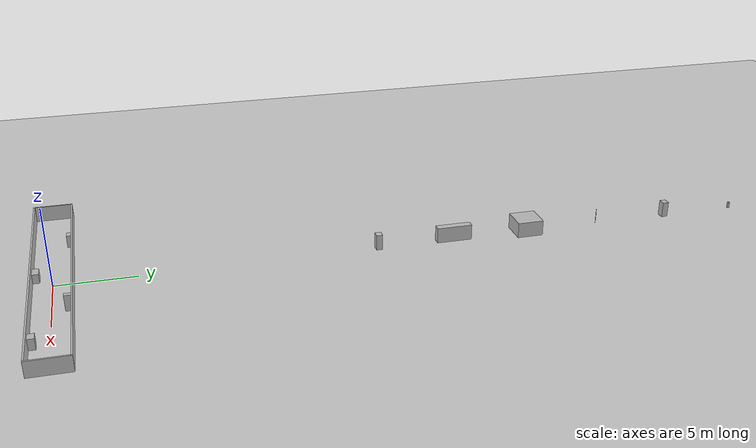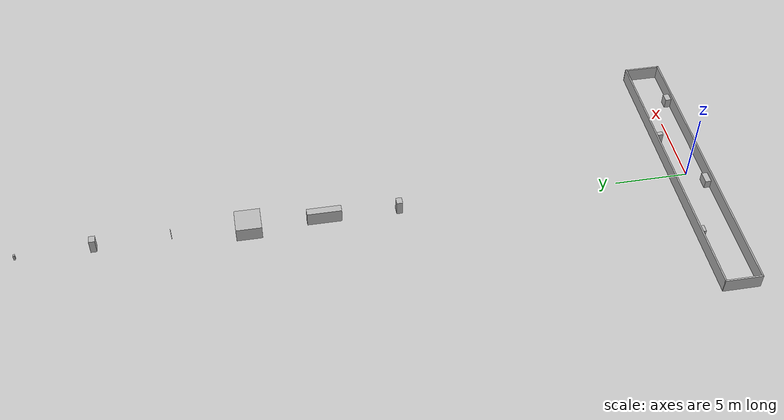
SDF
<?xml version='1.0' encoding='utf-8'?>
<sdf version="1.8">
  <world name="slam_corridor">
    <physics name="1ms" type="ignored">
      <max_step_size>0.001</max_step_size>
      <real_time_factor>1.0</real_time_factor>
    </physics>
    <plugin filename="gz-sim-physics-system" name="gz::sim::systems::Physics" />
    <plugin filename="gz-sim-user-commands-system" name="gz::sim::systems::UserCommands" />
    <plugin filename="gz-sim-contact-system" name="gz::sim::systems::Contact" />
    <plugin filename="gz-sim-scene-broadcaster-system" name="gz::sim::systems::SceneBroadcaster" />
    <plugin filename="gz-sim-sensors-system" name="gz::sim::systems::Sensors">
      <render_engine>ogre2</render_engine>
    </plugin>
    <plugin filename="gz-sim-imu-system" name="gz::sim::systems::Imu" />
    <light type="directional" name="sun">
      <pose>0 0 10 0 0 0</pose>
      <diffuse>0.8 0.8 0.8 1</diffuse>
      <specular>0.2 0.2 0.2 1</specular>
      <direction>-0.5 0.1 -0.9</direction>
    </light>
    <model name="ground_plane">
      <static>true</static>
      <link name="link">
        <collision name="collision">
          <geometry>
            <plane>
              <normal>0 0 1</normal>
              <size>50 12</size>
            </plane>
          </geometry>
        </collision>
        <visual name="visual">
          <geometry>
            <plane>
              <normal>0 0 1</normal>
              <size>50 12</size>
            </plane>
          </geometry>
          <material>
            <diffuse>0.78 0.78 0.78 1</diffuse>
          </material>
        </visual>
      </link>
    </model>
    <model name="wall_north">
      <static>true</static>
      <pose>0 1.2 0.5 0 0 0</pose>
      <link name="link">
        <collision name="collision">
          <geometry>
            <box>
              <size>20 0.1 1</size>
            </box>
          </geometry>
        </collision>
        <visual name="visual">
          <geometry>
            <box>
              <size>20 0.1 1</size>
            </box>
          </geometry>
        </visual>
      </link>
    </model>
    <model name="wall_south">
      <static>true</static>
      <pose>0 -1.2 0.5 0 0 0</pose>
      <link name="link">
        <collision name="collision">
          <geometry>
            <box>
              <size>20 0.1 1</size>
            </box>
          </geometry>
        </collision>
        <visual name="visual">
          <geometry>
            <box>
              <size>20 0.1 1</size>
            </box>
          </geometry>
        </visual>
      </link>
    </model>
    <model name="wall_west">
      <static>true</static>
      <pose>-10 0 0.5 0 0 0</pose>
      <link name="link">
        <collision name="collision">
          <geometry>
            <box>
              <size>0.1 2.5 1</size>
            </box>
          </geometry>
        </collision>
        <visual name="visual">
          <geometry>
            <box>
              <size>0.1 2.5 1</size>
            </box>
          </geometry>
        </visual>
      </link>
    </model>
    <model name="wall_east">
      <static>true</static>
      <pose>10 0 0.5 0 0 0</pose>
      <link name="link">
        <collision name="collision">
          <geometry>
            <box>
              <size>0.1 2.5 1</size>
            </box>
          </geometry>
        </collision>
        <visual name="visual">
          <geometry>
            <box>
              <size>0.1 2.5 1</size>
            </box>
          </geometry>
        </visual>
      </link>
    </model>
    <model name="feature_north_west">
      <static>true</static>
      <pose>-5.5 1.0 0.4 0 0 0</pose>
      <link name="link">
        <collision name="collision">
          <geometry>
            <box>
              <size>0.5 0.3 0.8</size>
            </box>
          </geometry>
        </collision>
        <visual name="visual">
          <geometry>
            <box>
              <size>0.5 0.3 0.8</size>
            </box>
          </geometry>
        </visual>
      </link>
    </model>
    <model name="feature_south_mid">
      <static>true</static>
      <pose>-1.0 -0.95 0.3 0 0 0</pose>
      <link name="link">
        <collision name="collision">
          <geometry>
            <box>
              <size>0.8 0.4 0.6</size>
            </box>
          </geometry>
        </collision>
        <visual name="visual">
          <geometry>
            <box>
              <size>0.8 0.4 0.6</size>
            </box>
          </geometry>
        </visual>
      </link>
    </model>
    <model name="feature_north_east">
      <static>true</static>
      <pose>3.2 0.95 0.5 0 0 0</pose>
      <link name="link">
        <collision name="collision">
          <geometry>
            <box>
              <size>0.3 0.4 1.0</size>
            </box>
          </geometry>
        </collision>
        <visual name="visual">
          <geometry>
            <box>
              <size>0.3 0.4 1.0</size>
            </box>
          </geometry>
        </visual>
      </link>
    </model>
    <model name="feature_south_east">
      <static>true</static>
      <pose>7.0 -0.95 0.35 0 0 0</pose>
      <link name="link">
        <collision name="collision">
          <geometry>
            <box>
              <size>0.6 0.4 0.7</size>
            </box>
          </geometry>
        </collision>
        <visual name="visual">
          <geometry>
            <box>
              <size>0.6 0.4 0.7</size>
            </box>
          </geometry>
        </visual>
      </link>
    </model>
    <model name="g003_preloaded_route_obstacle">
      <static>true</static>
      <pose>0.0 20.0 0.5 0.0 0.0 0.0</pose>
      <link name="body">
        <collision name="collision">
          <geometry>
            <box>
              <size>0.5 0.4 1.0</size>
            </box>
          </geometry>
        </collision>
        <visual name="visual">
          <geometry>
            <box>
              <size>0.5 0.4 1.0</size>
            </box>
          </geometry>
          <visibility_flags>4</visibility_flags>
        </visual>
        <sensor name="contact_sensor" type="contact">
          <always_on>true</always_on>
          <update_rate>50</update_rate>
          <contact>
            <collision>collision</collision>
          </contact>
        </sensor>
      </link>
    </model>
    <model name="g003_preloaded_full_block">
      <static>true</static>
      <pose>0.0 25.0 0.5 0.0 0.0 0.0</pose>
      <link name="body">
        <collision name="collision">
          <geometry>
            <box>
              <size>0.5 2.3 1.0</size>
            </box>
          </geometry>
        </collision>
        <visual name="visual">
          <geometry>
            <box>
              <size>0.5 2.3 1.0</size>
            </box>
          </geometry>
          <visibility_flags>4</visibility_flags>
        </visual>
        <sensor name="contact_sensor" type="contact">
          <always_on>true</always_on>
          <update_rate>50</update_rate>
          <contact>
            <collision>collision</collision>
          </contact>
        </sensor>
      </link>
    </model>
    <model name="g003_preloaded_goal_occupied">
      <static>true</static>
      <pose>0.0 30.0 0.5 0.0 0.0 0.0</pose>
      <link name="body">
        <collision name="collision">
          <geometry>
            <box>
              <size>1.7 1.7 1.0</size>
            </box>
          </geometry>
        </collision>
        <visual name="visual">
          <geometry>
            <box>
              <size>1.7 1.7 1.0</size>
            </box>
          </geometry>
          <visibility_flags>4</visibility_flags>
        </visual>
        <sensor name="contact_sensor" type="contact">
          <always_on>true</always_on>
          <update_rate>50</update_rate>
          <contact>
            <collision>collision</collision>
          </contact>
        </sensor>
      </link>
    </model>
    <model name="g003_preloaded_sub_minimum_probe">
      <static>true</static>
      <pose>0.0 35.0 0.5 0.0 0.0 0.0</pose>
      <link name="body">
        <collision name="collision">
          <geometry>
            <box>
              <size>0.02 0.02 1.0</size>
            </box>
          </geometry>
        </collision>
        <visual name="visual">
          <geometry>
            <box>
              <size>0.02 0.02 1.0</size>
            </box>
          </geometry>
          <visibility_flags>4</visibility_flags>
        </visual>
        <sensor name="contact_sensor" type="contact">
          <always_on>true</always_on>
          <update_rate>50</update_rate>
          <contact>
            <collision>collision</collision>
          </contact>
        </sensor>
      </link>
    </model>
    <model name="g003_preloaded_front_observation_probe">
      <static>true</static>
      <pose>0.0 40.0 0.5 0.0 0.0 0.0</pose>
      <link name="body">
        <collision name="collision">
          <geometry>
            <box>
              <size>0.5 0.4 1.0</size>
            </box>
          </geometry>
        </collision>
        <visual name="visual">
          <geometry>
            <box>
              <size>0.5 0.4 1.0</size>
            </box>
          </geometry>
          <visibility_flags>4</visibility_flags>
        </visual>
        <sensor name="contact_sensor" type="contact">
          <always_on>true</always_on>
          <update_rate>50</update_rate>
          <contact>
            <collision>collision</collision>
          </contact>
        </sensor>
      </link>
    </model>
    <model name="g003_preloaded_contact_control">
      <static>true</static>
      <pose>0.0 45.0 0.2 0.0 0.0 0.0</pose>
      <link name="body">
        <collision name="collision">
          <geometry>
            <box>
              <size>0.14 0.12 0.4</size>
            </box>
          </geometry>
        </collision>
        <visual name="visual">
          <geometry>
            <box>
              <size>0.14 0.12 0.4</size>
            </box>
          </geometry>
          <visibility_flags>4</visibility_flags>
        </visual>
        <sensor name="contact_sensor" type="contact">
          <always_on>true</always_on>
          <update_rate>50</update_rate>
          <contact>
            <collision>collision</collision>
          </contact>
        </sensor>
      </link>
    </model>
  </world>
</sdf>
